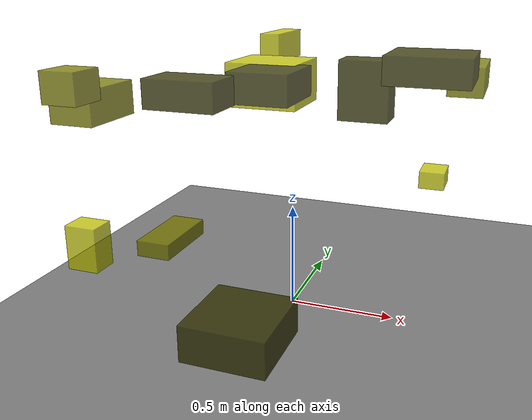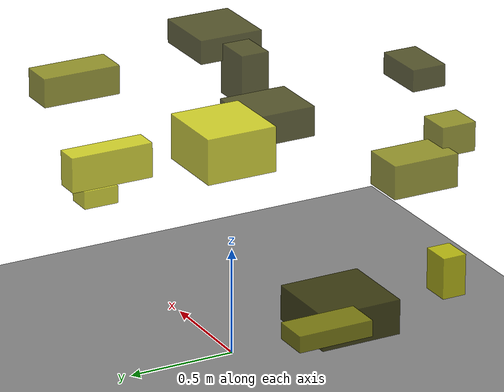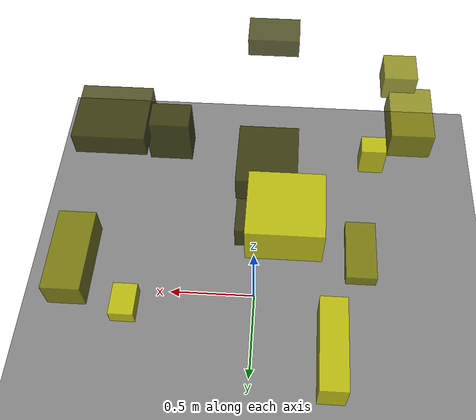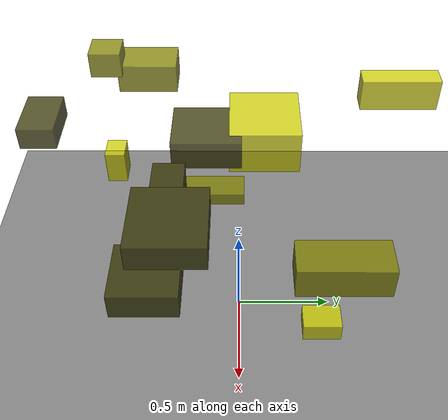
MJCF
<?xml version="1.0"?>
<mujoco model="obstacle_scene">
  <compiler angle="radian" coordinate="local"/>
  <option timestep="0.001" gravity="0 0 -9.81"/>

  <asset>
    <material name="obstacle_mat" rgba="0.8 0.8 0.0 0.8"/>
    <material name="ground_mat" rgba="0.5 0.5 0.5 1"/>
  </asset>

  <worldbody>
    <!-- Ground plane -->
    <geom name="ground" type="plane" size="3 3 0.1" material="ground_mat"/>

    <!-- Obstacles -->
    <body name="obstacle_0" pos="-0.052513 -0.884568 1.203892">
      <geom name="obs_0" type="box" size="0.127935 0.080801 0.050591" rgba="0.2 0.2 0.0 0.8"/>
    </body>
    <body name="obstacle_1" pos="-0.587494 -0.148148 0.323212">
      <geom name="obs_1" type="box" size="0.083889 0.178109 0.038439" rgba="0.5 0.5 0.0 0.8"/>
    </body>
    <body name="obstacle_2" pos="0.612090 0.362075 0.615025">
      <geom name="obs_2" type="box" size="0.060594 0.082446 0.041692" rgba="0.8 0.8 0.0 0.8"/>
    </body>
    <body name="obstacle_3" pos="0.407855 -0.284335 1.143070">
      <geom name="obs_3" type="box" size="0.099605 0.065785 0.118768" rgba="0.2 0.2 0.0 0.8"/>
    </body>
    <body name="obstacle_4" pos="-0.735514 -0.482114 1.057851">
      <geom name="obs_4" type="box" size="0.100457 0.153224 0.075381" rgba="0.5 0.5 0.0 0.8"/>
    </body>
    <body name="obstacle_5" pos="-0.645546 -0.706524 0.501220">
      <geom name="obs_5" type="box" size="0.069679 0.054925 0.095101" rgba="0.8 0.8 0.0 0.8"/>
    </body>
    <body name="obstacle_6" pos="-0.055383 -0.145589 1.116812">
      <geom name="obs_6" type="box" size="0.137288 0.157836 0.068358" rgba="0.2 0.2 0.0 0.8"/>
    </body>
    <body name="obstacle_7" pos="-0.678545 -0.686941 1.159380">
      <geom name="obs_7" type="box" size="0.078670 0.079792 0.066113" rgba="0.5 0.5 0.0 0.8"/>
    </body>
    <body name="obstacle_8" pos="-0.345049 0.769948 1.184656">
      <geom name="obs_8" type="box" size="0.053893 0.184628 0.077299" rgba="0.8 0.8 0.0 0.8"/>
    </body>
    <body name="obstacle_9" pos="-0.055274 -0.519225 0.120163">
      <geom name="obs_9" type="box" size="0.193266 0.195981 0.083955" rgba="0.2 0.2 0.0 0.8"/>
    </body>
    <body name="obstacle_10" pos="0.742555 0.393139 1.111964">
      <geom name="obs_10" type="box" size="0.080488 0.183901 0.067473" rgba="0.5 0.5 0.0 0.8"/>
    </body>
    <body name="obstacle_11" pos="-0.147388 0.118315 1.082442">
      <geom name="obs_11" type="box" size="0.171183 0.162985 0.103844" rgba="0.8 0.8 0.0 0.8"/>
    </body>
    <body name="obstacle_12" pos="0.652298 -0.262458 1.237026">
      <geom name="obs_12" type="box" size="0.161741 0.151676 0.055420" rgba="0.2 0.2 0.0 0.8"/>
    </body>
  </worldbody>
</mujoco>
